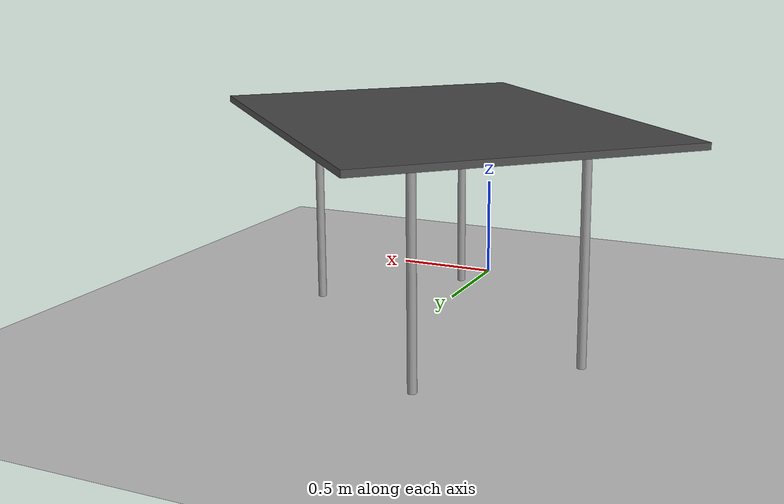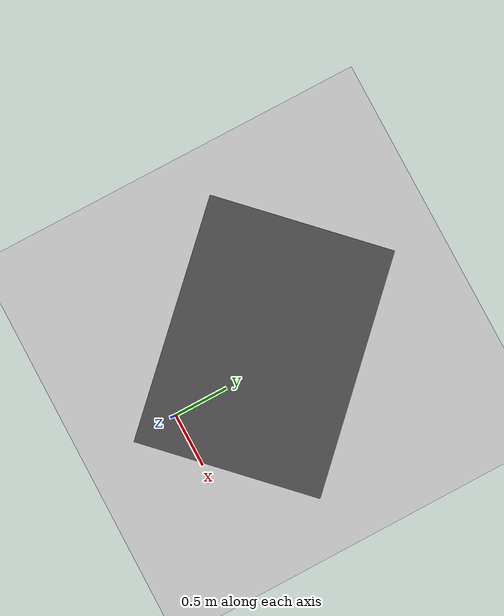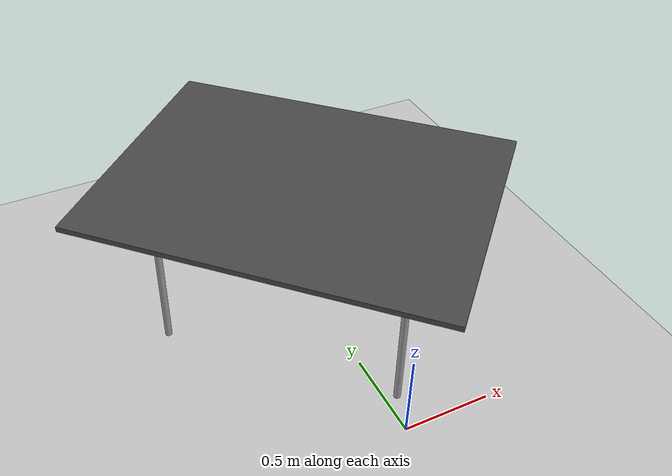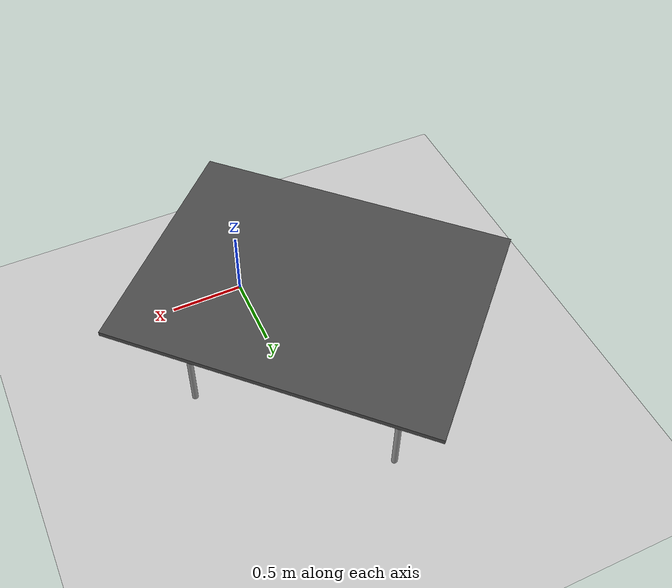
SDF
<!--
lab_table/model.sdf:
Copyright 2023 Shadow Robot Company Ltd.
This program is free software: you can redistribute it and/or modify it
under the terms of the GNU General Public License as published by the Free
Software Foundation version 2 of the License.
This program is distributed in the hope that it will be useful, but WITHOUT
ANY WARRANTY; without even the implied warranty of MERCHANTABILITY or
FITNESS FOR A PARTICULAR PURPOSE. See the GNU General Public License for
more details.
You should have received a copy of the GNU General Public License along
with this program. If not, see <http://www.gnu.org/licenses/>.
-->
<sdf version="1.4">
 <world name="default">
  <include><uri>model://ground</uri><pose>-0.20 0.60 0.0 0 0 2.35619</pose></include>
  <light type="directional" name="lab_light">
   <pose>0.86 1.96 2.5 -1.55 0 0</pose>
   <diffuse>.8 .8 .8 1</diffuse>
   <specular>.2 .2 .2 1</specular>
   <attenuation>
    <range>20</range>
    <constant>0.9</constant>
    <linear>0.01</linear>
    <quadratic>0.001</quadratic>
   </attenuation>
   <direction>0 0 -1</direction>
  </light>
  <include>
   <uri>model://lab_table</uri>
   <static>true</static>
   <name>lab_table</name>
   <pose>-0.14 0.96 0.0 0 0 2.35619</pose>
  </include>
  <include>
   <uri>model://ground</uri>
   <static>true</static>
   <name>ground_2</name>
   <pose>-0.2 0.6 1.907 0 0 2.35619</pose>
  </include>
  <physics type="ode">
   <gravity>0.000000 0.000000 -9.810000</gravity>
   <ode>
    <solver><type>quick</type><iters>100</iters><precon_iters>0</precon_iters><sor>1.000000</sor></solver>
    <constraints>
     <cfm>0.000000</cfm>
     <erp>0.500000</erp>
     <contact_max_correcting_vel>1000.000000</contact_max_correcting_vel>
     <contact_surface_layer>0.00000</contact_surface_layer>
    </constraints>
   </ode>
   <real_time_update_rate>1000.0</real_time_update_rate>
   <max_step_size>0.001000</max_step_size>
  </physics>
  <scene><ambient>0.4 0.4 0.4 1</ambient><background>0.7 0.7 1 1</background><shadows>1</shadows></scene>
 </world>
</sdf>

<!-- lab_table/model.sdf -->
<sdf version="1.4">
  <model name="lab_table">
    <static>true</static>
    <link name="link">
      <collision name="surface">
        <pose>0 0 0.984 0 0 0</pose>
        <geometry>
          <box>
            <size>2.0 1.5 0.03</size>
          </box>
        </geometry>
        <surface>
          <friction>
            <ode>
              <mu>0.6</mu>
              <mu2>0.6</mu2>
            </ode>
          </friction>
        </surface>
      </collision>
      <visual name="visual1">
        <pose>0 0 0.984 0 0 0</pose>
        <geometry>
          <box>
            <size>2.0 1.5 0.03</size>
          </box>
        </geometry>
        <material>
          <script>
            <uri>file://media/materials/scripts/gazebo.material</uri>
            <name>Gazebo/DarkGrey</name>
          </script>
        </material>
      </visual>
      <collision name="front_left_leg">
        <pose>0.68 0.38 0.492 0 0 0</pose>
        <geometry>
          <cylinder>
            <radius>0.02</radius>
            <length>0.984</length>
          </cylinder>
        </geometry>
      </collision>
      <visual name="front_left_leg">
        <pose>0.68 0.38 0.492 0 0 0</pose>
        <geometry>
          <cylinder>
            <radius>0.02</radius>
            <length>0.984</length>
          </cylinder>
        </geometry>
        <material>
          <script>
            <uri>file://media/materials/scripts/gazebo.material</uri>
            <name>Gazebo/Grey</name>
          </script>
        </material>
      </visual>
      <collision name="front_right_leg">
        <pose>0.68 -0.38 0.492 0 0 0</pose>
        <geometry>
          <cylinder>
            <radius>0.02</radius>
            <length>0.984</length>
          </cylinder>
        </geometry>
      </collision>
      <visual name="front_right_leg">
        <pose>0.68 -0.38 0.492 0 0 0</pose>
        <geometry>
          <cylinder>
            <radius>0.02</radius>
            <length>0.984</length>
          </cylinder>
        </geometry>
        <material>
          <script>
            <uri>file://media/materials/scripts/gazebo.material</uri>
            <name>Gazebo/Grey</name>
          </script>
        </material>
      </visual>
      <collision name="back_right_leg">
        <pose>-0.68 -0.38 0.492 0 0 0</pose>
        <geometry>
          <cylinder>
            <radius>0.02</radius>
            <length>0.984</length>
          </cylinder>
        </geometry>
      </collision>
      <visual name="back_right_leg">
        <pose>-0.68 -0.38 0.492 0 0 0</pose>
        <geometry>
          <cylinder>
            <radius>0.02</radius>
            <length>0.984</length>
          </cylinder>
        </geometry>
        <material>
          <script>
            <uri>file://media/materials/scripts/gazebo.material</uri>
            <name>Gazebo/Grey</name>
          </script>
        </material>
      </visual>
      <collision name="back_left_leg">
        <pose>-0.68 0.38 0.492 0 0 0</pose>
        <geometry>
          <cylinder>
            <radius>0.02</radius>
            <length>0.984</length>
          </cylinder>
        </geometry>
      </collision>
      <visual name="back_left_leg">
        <pose>-0.68 0.38 0.492 0 0 0</pose>
        <geometry>
          <cylinder>
            <radius>0.02</radius>
            <length>0.984</length>
          </cylinder>
        </geometry>
        <material>
          <script>
            <uri>file://media/materials/scripts/gazebo.material</uri>
            <name>Gazebo/Grey</name>
          </script>
        </material>
      </visual>
    </link>
  </model>
</sdf>
